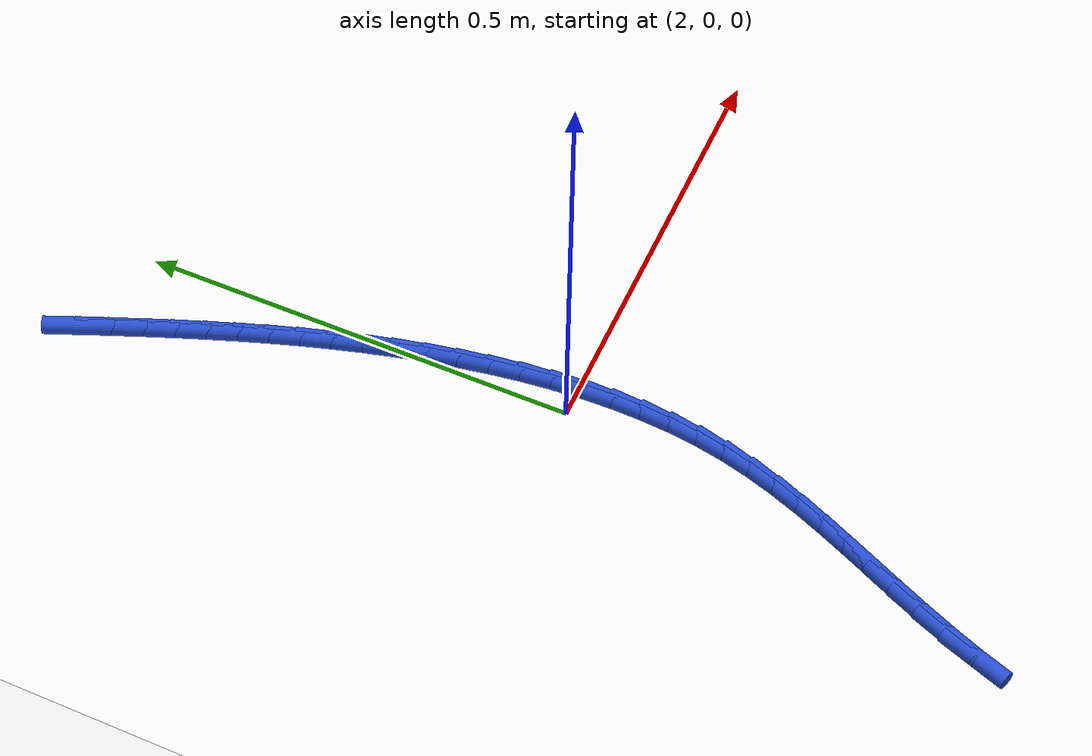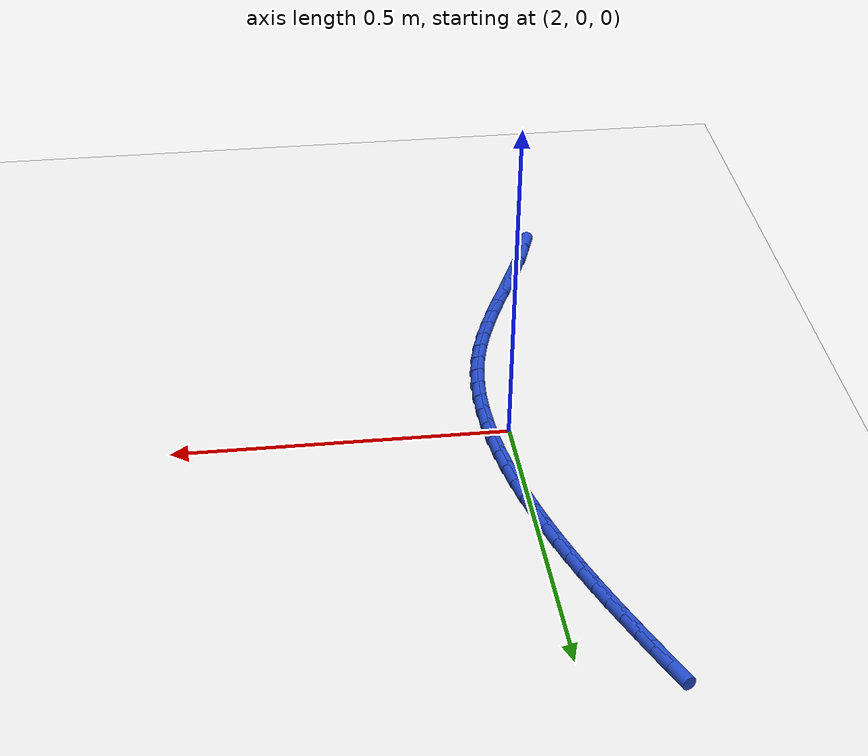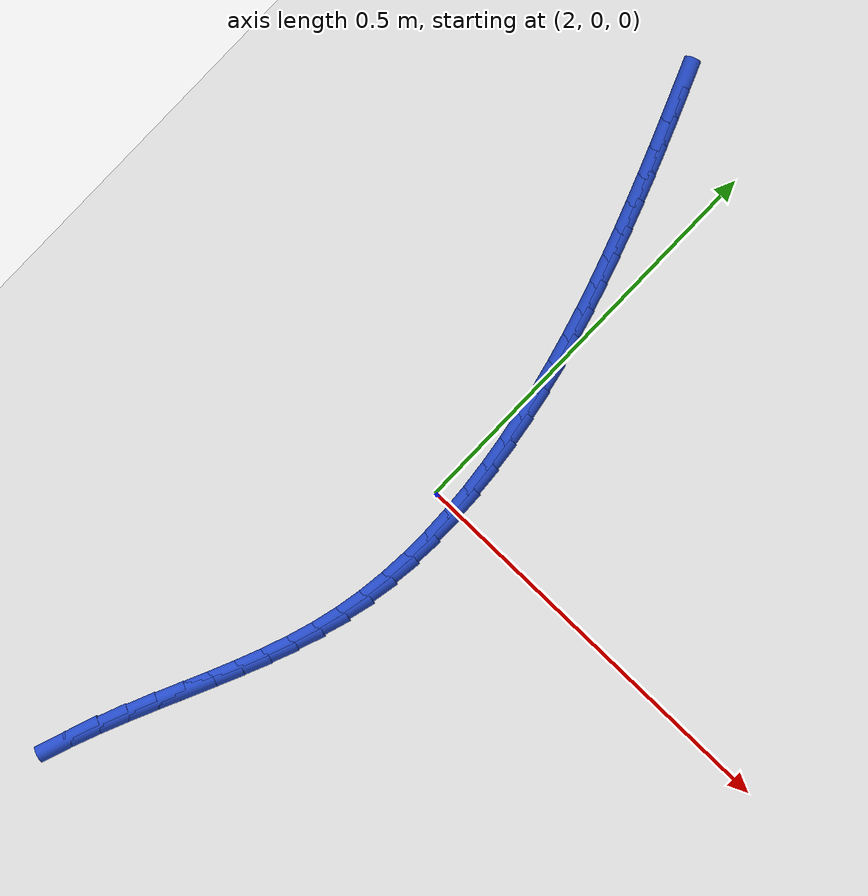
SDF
<sdf version="1.6">
 <world name="default">
  <model name="ground_plane">
   <static>1</static>
   <link name="link">
    <collision name="collision">
     <geometry><plane><normal>0 0 1</normal><size>100 100</size></plane></geometry>
     <surface><friction><ode><mu>100</mu><mu2>50</mu2></ode></friction></surface>
    </collision>
    <visual name="visual">
     <cast_shadows>0</cast_shadows>
     <geometry><plane><normal>0 0 1</normal><size>100 100</size></plane></geometry>
     <material>
      <script><uri>file://media/materials/scripts/gazebo.material</uri><name>Gazebo/WhiteGlow</name></script>
     </material>
    </visual>
   </link>
  </model>
  <model name="line">
   <link name="link_78">
    <pose>1.882333486162192 0.5295451275337077 0.01 0 1.57 -1.1814196584104275</pose>
    <collision name="collision">
     <geometry><cylinder><radius>0.01</radius><length>0.08</length></cylinder></geometry>
    </collision>
    <visual name="visual">
     <material>
      <script><name>Gazebo/Blue</name><uri>file://media/materials/scripts/gazebo.material</uri></script>
     </material>
     <geometry><cylinder><radius>0.01</radius><length>0.08</length></cylinder></geometry>
    </visual>
   </link>
   <link name="link_79">
    <pose>1.8958192397557925 0.4966792139317892 0.01 0 1.57 -1.1900003405395267</pose>
    <collision name="collision">
     <geometry><cylinder><radius>0.01</radius><length>0.08</length></cylinder></geometry>
    </collision>
    <visual name="visual">
     <material>
      <script><name>Gazebo/Blue</name><uri>file://media/materials/scripts/gazebo.material</uri></script>
     </material>
     <geometry><cylinder><radius>0.01</radius><length>0.08</length></cylinder></geometry>
    </visual>
   </link>
   <link name="link_80">
    <pose>1.9088972506124697 0.4640116263824651 0.01 0 1.57 -1.1971916360750006</pose>
    <collision name="collision">
     <geometry><cylinder><radius>0.01</radius><length>0.08</length></cylinder></geometry>
    </collision>
    <visual name="visual">
     <material>
      <script><name>Gazebo/Blue</name><uri>file://media/materials/scripts/gazebo.material</uri></script>
     </material>
     <geometry><cylinder><radius>0.01</radius><length>0.08</length></cylinder></geometry>
    </visual>
   </link>
   <link name="link_81">
    <pose>1.9216074697821217 0.4315889178199211 0.01 0 1.57 -1.2066950403612424</pose>
    <collision name="collision">
     <geometry><cylinder><radius>0.01</radius><length>0.08</length></cylinder></geometry>
    </collision>
    <visual name="visual">
     <material>
      <script><name>Gazebo/Blue</name><uri>file://media/materials/scripts/gazebo.material</uri></script>
     </material>
     <geometry><cylinder><radius>0.01</radius><length>0.08</length></cylinder></geometry>
    </visual>
   </link>
   <link name="link_82">
    <pose>1.9339102076695645 0.3993061023886252 0.01 0 1.57 -1.218617969226812</pose>
    <collision name="collision">
     <geometry><cylinder><radius>0.01</radius><length>0.08</length></cylinder></geometry>
    </collision>
    <visual name="visual">
     <material>
      <script><name>Gazebo/Blue</name><uri>file://media/materials/scripts/gazebo.material</uri></script>
     </material>
     <geometry><cylinder><radius>0.01</radius><length>0.08</length></cylinder></geometry>
    </visual>
   </link>
   <link name="link_83">
    <pose>1.9457631320745834 0.36705316593164045 0.01 0 1.57 -1.2329040900280712</pose>
    <collision name="collision">
     <geometry><cylinder><radius>0.01</radius><length>0.08</length></cylinder></geometry>
    </collision>
    <visual name="visual">
     <material>
      <script><name>Gazebo/Blue</name><uri>file://media/materials/scripts/gazebo.material</uri></script>
     </material>
     <geometry><cylinder><radius>0.01</radius><length>0.08</length></cylinder></geometry>
    </visual>
   </link>
   <link name="link_84">
    <pose>1.9571239107969656 0.33472009429202854 0.01 0 1.57 -1.2494546294863396</pose>
    <collision name="collision">
     <geometry><cylinder><radius>0.01</radius><length>0.08</length></cylinder></geometry>
    </collision>
    <visual name="visual">
     <material>
      <script><name>Gazebo/Blue</name><uri>file://media/materials/scripts/gazebo.material</uri></script>
     </material>
     <geometry><cylinder><radius>0.01</radius><length>0.08</length></cylinder></geometry>
    </visual>
   </link>
   <link name="link_85">
    <pose>1.9679502116364977 0.30219687331285244 0.01 0 1.57 -1.2681284354932298</pose>
    <collision name="collision">
     <geometry><cylinder><radius>0.01</radius><length>0.08</length></cylinder></geometry>
    </collision>
    <visual name="visual">
     <material>
      <script><name>Gazebo/Blue</name><uri>file://media/materials/scripts/gazebo.material</uri></script>
     </material>
     <geometry><cylinder><radius>0.01</radius><length>0.08</length></cylinder></geometry>
    </visual>
   </link>
   <link name="link_86">
    <pose>1.9781997023929663 0.26937348883717505 0.01 0 1.57 -1.2887438809335483</pose>
    <collision name="collision">
     <geometry><cylinder><radius>0.01</radius><length>0.08</length></cylinder></geometry>
    </collision>
    <visual name="visual">
     <material>
      <script><name>Gazebo/Blue</name><uri>file://media/materials/scripts/gazebo.material</uri></script>
     </material>
     <geometry><cylinder><radius>0.01</radius><length>0.08</length></cylinder></geometry>
    </visual>
   </link>
   <link name="link_87">
    <pose>1.987830050866158 0.23613992670805822 0.01 0 1.57 -1.3111142418382111</pose>
    <collision name="collision">
     <geometry><cylinder><radius>0.01</radius><length>0.08</length></cylinder></geometry>
    </collision>
    <visual name="visual">
     <material>
      <script><name>Gazebo/Blue</name><uri>file://media/materials/scripts/gazebo.material</uri></script>
     </material>
     <geometry><cylinder><radius>0.01</radius><length>0.08</length></cylinder></geometry>
    </visual>
   </link>
   <link name="link_88">
    <pose>1.9967949628382717 0.20239680371344757 0.01 0 1.57 -1.335471030985032</pose>
    <collision name="collision">
     <geometry><cylinder><radius>0.01</radius><length>0.08</length></cylinder></geometry>
    </collision>
    <visual name="visual">
     <material>
      <script><name>Gazebo/Blue</name><uri>file://media/materials/scripts/gazebo.material</uri></script>
     </material>
     <geometry><cylinder><radius>0.01</radius><length>0.08</length></cylinder></geometry>
    </visual>
   </link>
   <link name="link_89">
    <pose>2.0050014148939024 0.16817012112360355 0.01 0 1.57 -1.3621999156690223</pose>
    <collision name="collision">
     <geometry><cylinder><radius>0.01</radius><length>0.08</length></cylinder></geometry>
    </collision>
    <visual name="visual">
     <material>
      <script><name>Gazebo/Blue</name><uri>file://media/materials/scripts/gazebo.material</uri></script>
     </material>
     <geometry><cylinder><radius>0.01</radius><length>0.08</length></cylinder></geometry>
    </visual>
   </link>
   <link name="link_90">
    <pose>2.0123259141665897 0.1335676362958323 0.01 0 1.57 -1.3915344837410653</pose>
    <collision name="collision">
     <geometry><cylinder><radius>0.01</radius><length>0.08</length></cylinder></geometry>
    </collision>
    <visual name="visual">
     <material>
      <script><name>Gazebo/Blue</name><uri>file://media/materials/scripts/gazebo.material</uri></script>
     </material>
     <geometry><cylinder><radius>0.01</radius><length>0.08</length></cylinder></geometry>
    </visual>
   </link>
   <link name="link_91">
    <pose>2.0186444453203642 0.09869850848544172 0.01 0 1.57 -1.4237341728786983</pose>
    <collision name="collision">
     <geometry><cylinder><radius>0.01</radius><length>0.08</length></cylinder></geometry>
    </collision>
    <visual name="visual">
     <material>
      <script><name>Gazebo/Blue</name><uri>file://media/materials/scripts/gazebo.material</uri></script>
     </material>
     <geometry><cylinder><radius>0.01</radius><length>0.08</length></cylinder></geometry>
    </visual>
   </link>
   <link name="link_92">
    <pose>2.02383299301926 0.06367189694774084 0.01 0 1.57 -1.4590878083567909</pose>
    <collision name="collision">
     <geometry><cylinder><radius>0.01</radius><length>0.08</length></cylinder></geometry>
    </collision>
    <visual name="visual">
     <material>
      <script><name>Gazebo/Blue</name><uri>file://media/materials/scripts/gazebo.material</uri></script>
     </material>
     <geometry><cylinder><radius>0.01</radius><length>0.08</length></cylinder></geometry>
    </visual>
   </link>
   <link name="link_93">
    <pose>2.027767541927306 0.028596960938038665 0.01 0 1.57 -1.4979112286637883</pose>
    <collision name="collision">
     <geometry><cylinder><radius>0.01</radius><length>0.08</length></cylinder></geometry>
    </collision>
    <visual name="visual">
     <material>
      <script><name>Gazebo/Blue</name><uri>file://media/materials/scripts/gazebo.material</uri></script>
     </material>
     <geometry><cylinder><radius>0.01</radius><length>0.08</length></cylinder></geometry>
    </visual>
   </link>
   <link name="link_94">
    <pose>2.0303240767085367 -0.006417140288356951 0.01 0 1.57 -1.5405420414461457</pose>
    <collision name="collision">
     <geometry><cylinder><radius>0.01</radius><length>0.08</length></cylinder></geometry>
    </collision>
    <visual name="visual">
     <material>
      <script><name>Gazebo/Blue</name><uri>file://media/materials/scripts/gazebo.material</uri></script>
     </material>
     <geometry><cylinder><radius>0.01</radius><length>0.08</length></cylinder></geometry>
    </visual>
   </link>
   <link name="link_95">
    <pose>2.031378582026982 -0.041261247476136964 0.01 0 1.57 1.5542626030216902</pose>
    <collision name="collision">
     <geometry><cylinder><radius>0.01</radius><length>0.08</length></cylinder></geometry>
    </collision>
    <visual name="visual">
     <material>
      <script><name>Gazebo/Blue</name><uri>file://media/materials/scripts/gazebo.material</uri></script>
     </material>
     <geometry><cylinder><radius>0.01</radius><length>0.08</length></cylinder></geometry>
    </visual>
   </link>
   <link name="link_96">
    <pose>2.0308070425466744 -0.0758262013699928 0.01 0 1.57 1.5029710975463575</pose>
    <collision name="collision">
     <geometry><cylinder><radius>0.01</radius><length>0.08</length></cylinder></geometry>
    </collision>
    <visual name="visual">
     <material>
      <script><name>Gazebo/Blue</name><uri>file://media/materials/scripts/gazebo.material</uri></script>
     </material>
     <geometry><cylinder><radius>0.01</radius><length>0.08</length></cylinder></geometry>
    </visual>
   </link>
   <link name="link_97">
    <pose>2.028485442931645 -0.11000284271461576 0.01 0 1.57 1.4468571099424645</pose>
    <collision name="collision">
     <geometry><cylinder><radius>0.01</radius><length>0.08</length></cylinder></geometry>
    </collision>
    <visual name="visual">
     <material>
      <script><name>Gazebo/Blue</name><uri>file://media/materials/scripts/gazebo.material</uri></script>
     </material>
     <geometry><cylinder><radius>0.01</radius><length>0.08</length></cylinder></geometry>
    </visual>
   </link>
   <link name="link_98">
    <pose>2.024289767845927 -0.14368201225469657 0.01 0 1.57 1.3856626404113297</pose>
    <collision name="collision">
     <geometry><cylinder><radius>0.01</radius><length>0.08</length></cylinder></geometry>
    </collision>
    <visual name="visual">
     <material>
      <script><name>Gazebo/Blue</name><uri>file://media/materials/scripts/gazebo.material</uri></script>
     </material>
     <geometry><cylinder><radius>0.01</radius><length>0.08</length></cylinder></geometry>
    </visual>
   </link>
   <link name="link_99">
    <pose>2.01809600195355 -0.17675455073492802 0.01 0 1.57 1.3215204589278504</pose>
    <collision name="collision">
     <geometry><cylinder><radius>0.01</radius><length>0.08</length></cylinder></geometry>
    </collision>
    <visual name="visual">
     <material>
      <script><name>Gazebo/Blue</name><uri>file://media/materials/scripts/gazebo.material</uri></script>
     </material>
     <geometry><cylinder><radius>0.01</radius><length>0.08</length></cylinder></geometry>
    </visual>
   </link>
   <link name="link_100">
    <pose>2.0098481084641566 -0.20915377377999725 0.01 0 1.57 1.2647056211331673</pose>
    <collision name="collision">
     <geometry><cylinder><radius>0.01</radius><length>0.08</length></cylinder></geometry>
    </collision>
    <visual name="visual">
     <material>
      <script><name>Gazebo/Blue</name><uri>file://media/materials/scripts/gazebo.material</uri></script>
     </material>
     <geometry><cylinder><radius>0.01</radius><length>0.08</length></cylinder></geometry>
    </visual>
   </link>
   <link name="link_101">
    <pose>1.9997848685865927 -0.24099720747429917 0.01 0 1.57 1.2186128936361669</pose>
    <collision name="collision">
     <geometry><cylinder><radius>0.01</radius><length>0.08</length></cylinder></geometry>
    </collision>
    <visual name="visual">
     <material>
      <script><name>Gazebo/Blue</name><uri>file://media/materials/scripts/gazebo.material</uri></script>
     </material>
     <geometry><cylinder><radius>0.01</radius><length>0.08</length></cylinder></geometry>
    </visual>
   </link>
   <link name="link_102">
    <pose>1.9882249682006563 -0.27245230455599084 0.01 0 1.57 1.1835685478682336</pose>
    <collision name="collision">
     <geometry><cylinder><radius>0.01</radius><length>0.08</length></cylinder></geometry>
    </collision>
    <visual name="visual">
     <material>
      <script><name>Gazebo/Blue</name><uri>file://media/materials/scripts/gazebo.material</uri></script>
     </material>
     <geometry><cylinder><radius>0.01</radius><length>0.08</length></cylinder></geometry>
    </visual>
   </link>
   <link name="link_103">
    <pose>1.9754870946297172 -0.30368651866521196 0.01 0 1.57 1.1595826111379943</pose>
    <collision name="collision">
     <geometry><cylinder><radius>0.01</radius><length>0.08</length></cylinder></geometry>
    </collision>
    <visual name="visual">
     <material>
      <script><name>Gazebo/Blue</name><uri>file://media/materials/scripts/gazebo.material</uri></script>
     </material>
     <geometry><cylinder><radius>0.01</radius><length>0.08</length></cylinder></geometry>
    </visual>
   </link>
   <link name="link_104">
    <pose>1.9618899351971437 -0.33486730344210225 0.01 0 1.57 1.1464793490175669</pose>
    <collision name="collision">
     <geometry><cylinder><radius>0.01</radius><length>0.08</length></cylinder></geometry>
    </collision>
    <visual name="visual">
     <material>
      <script><name>Gazebo/Blue</name><uri>file://media/materials/scripts/gazebo.material</uri></script>
     </material>
     <geometry><cylinder><radius>0.01</radius><length>0.08</length></cylinder></geometry>
    </visual>
   </link>
   <link name="link_105">
    <pose>1.947752177226306 -0.3661621125268009 0.01 0 1.57 1.1439900716187115</pose>
    <collision name="collision">
     <geometry><cylinder><radius>0.01</radius><length>0.08</length></cylinder></geometry>
    </collision>
    <visual name="visual">
     <material>
      <script><name>Gazebo/Blue</name><uri>file://media/materials/scripts/gazebo.material</uri></script>
     </material>
     <geometry><cylinder><radius>0.01</radius><length>0.08</length></cylinder></geometry>
    </visual>
   </link>
   <link name="link_106">
    <pose>1.9333925080405725 -0.397738399559449 0.01 0 1.57 1.1518040283742284</pose>
    <collision name="collision">
     <geometry><cylinder><radius>0.01</radius><length>0.08</length></cylinder></geometry>
    </collision>
    <visual name="visual">
     <material>
      <script><name>Gazebo/Blue</name><uri>file://media/materials/scripts/gazebo.material</uri></script>
     </material>
     <geometry><cylinder><radius>0.01</radius><length>0.08</length></cylinder></geometry>
    </visual>
   </link>
   <link name="link_107">
    <pose>1.9191296149633132 -0.4297636181801857 0.01 0 1.57 1.1695811195167276</pose>
    <collision name="collision">
     <geometry><cylinder><radius>0.01</radius><length>0.08</length></cylinder></geometry>
    </collision>
    <visual name="visual">
     <material>
      <script><name>Gazebo/Blue</name><uri>file://media/materials/scripts/gazebo.material</uri></script>
     </material>
     <geometry><cylinder><radius>0.01</radius><length>0.08</length></cylinder></geometry>
    </visual>
   </link>
   <link name="link_108">
    <pose>1.9052821853178954 -0.46240522202915046 0.01 0 1.57 1.1969330685583595</pose>
    <collision name="collision">
     <geometry><cylinder><radius>0.01</radius><length>0.08</length></cylinder></geometry>
    </collision>
    <visual name="visual">
     <material>
      <script><name>Gazebo/Blue</name><uri>file://media/materials/scripts/gazebo.material</uri></script>
     </material>
     <geometry><cylinder><radius>0.01</radius><length>0.08</length></cylinder></geometry>
    </visual>
   </link>
   <link name="link_109">
    <pose>1.89216890642769 -0.4958306647464834 0.01 0 1.57 1.23338096232352</pose>
    <collision name="collision">
     <geometry><cylinder><radius>0.01</radius><length>0.08</length></cylinder></geometry>
    </collision>
    <visual name="visual">
     <material>
      <script><name>Gazebo/Blue</name><uri>file://media/materials/scripts/gazebo.material</uri></script>
     </material>
     <geometry><cylinder><radius>0.01</radius><length>0.08</length></cylinder></geometry>
    </visual>
   </link>
  </model>
 </world>
</sdf>
